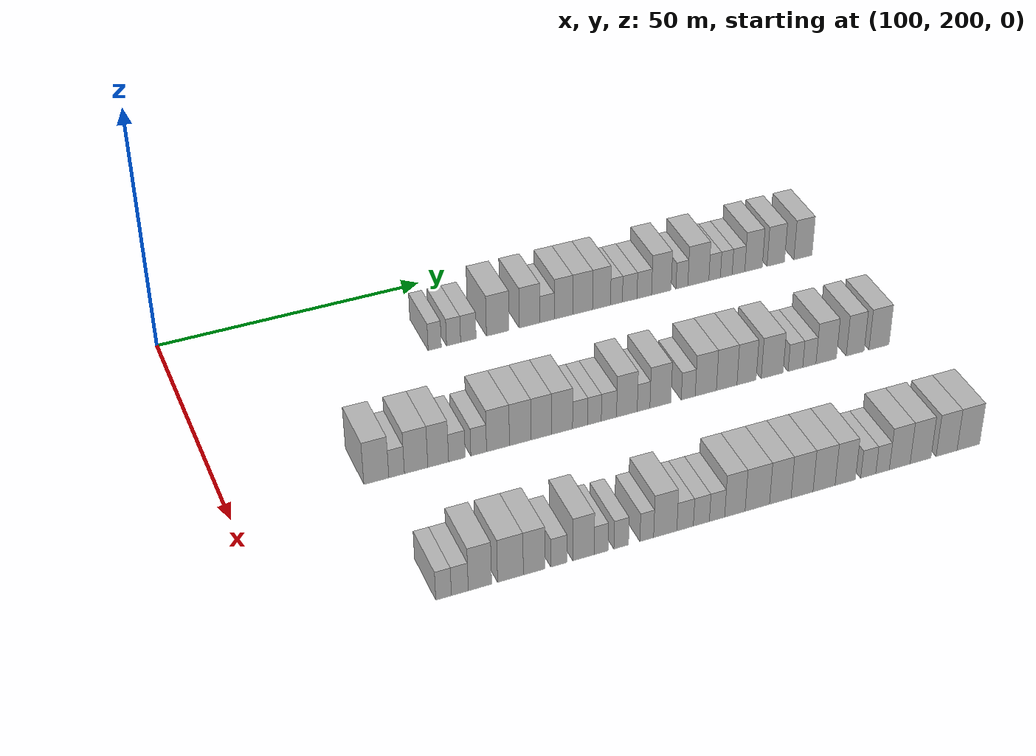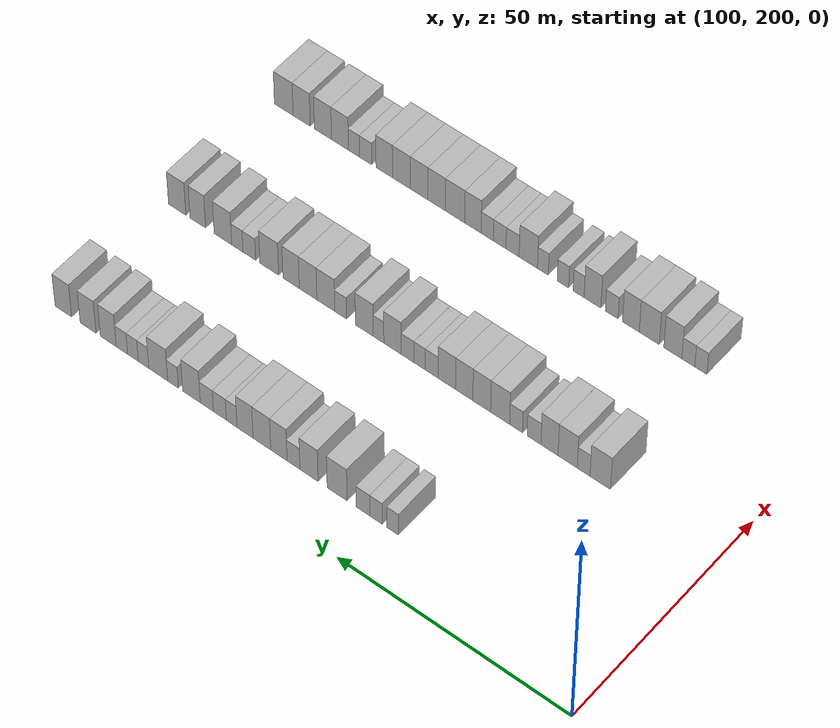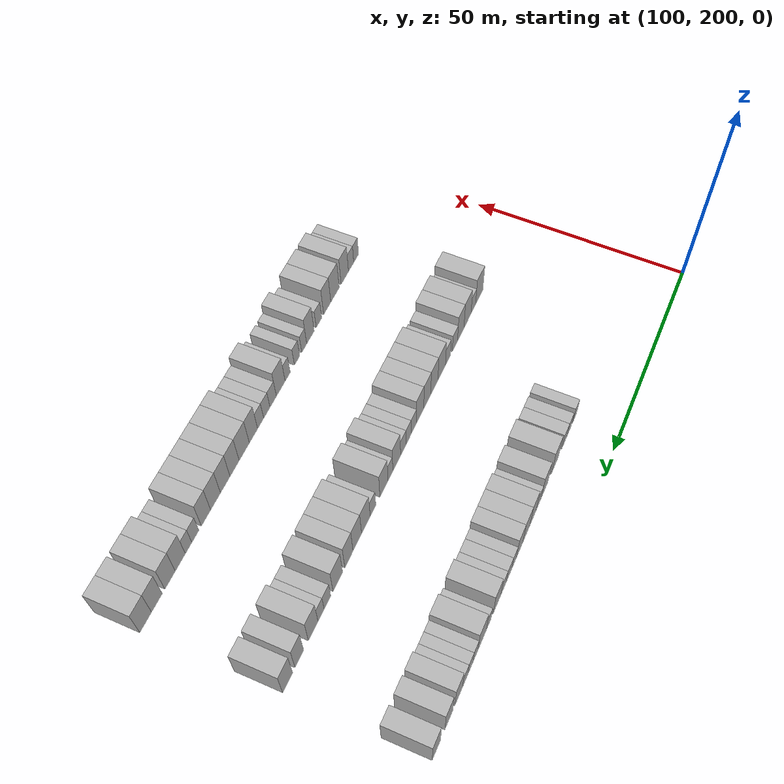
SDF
<sdf version="1.6">
 <world name="default">
  <model name="building_868">
   <static>1</static>
   <pose>115.0000 246.0410 0 0.000000 0.000000 0.000000</pose>
   <link name="link">
    <pose>0 0 3.00 0 0 0</pose>
    <collision name="collision"><geometry><box><size>10.0000 2.5230 6.0000</size></box></geometry></collision>
    <visual name="visual">
     <cast_shadows>0</cast_shadows>
     <geometry><box><size>10.0000 2.5230 6.0000</size></box></geometry>
     <material>
      <script>
       <uri>model://HANNAS_wall/materials/scripts</uri>
       <uri>model://HANNAS_wall/materials/textures</uri>
       <name>vrc/HANNAS_wall</name>
      </script>
     </material>
    </visual>
   </link>
  </model>
  <model name="building_869">
   <static>1</static>
   <pose>115.0000 249.6527 0 0.000000 0.000000 0.000000</pose>
   <link name="link">
    <pose>0 0 3.00 0 0 0</pose>
    <collision name="collision"><geometry><box><size>10.0000 2.7004 6.0000</size></box></geometry></collision>
    <visual name="visual">
     <cast_shadows>0</cast_shadows>
     <geometry><box><size>10.0000 2.7004 6.0000</size></box></geometry>
     <material>
      <script>
       <uri>model://HANNAS_wall/materials/scripts</uri>
       <uri>model://HANNAS_wall/materials/textures</uri>
       <name>vrc/HANNAS_wall</name>
      </script>
     </material>
    </visual>
   </link>
  </model>
  <model name="building_870">
   <static>1</static>
   <pose>115.0000 252.5014 0 0.000000 0.000000 0.000000</pose>
   <link name="link">
    <pose>0 0 3.00 0 0 0</pose>
    <collision name="collision"><geometry><box><size>10.0000 2.9969 6.0000</size></box></geometry></collision>
    <visual name="visual">
     <cast_shadows>0</cast_shadows>
     <geometry><box><size>10.0000 2.9969 6.0000</size></box></geometry>
     <material>
      <script>
       <uri>model://HANNAS_wall/materials/scripts</uri>
       <uri>model://HANNAS_wall/materials/textures</uri>
       <name>vrc/HANNAS_wall</name>
      </script>
     </material>
    </visual>
   </link>
  </model>
  <model name="building_871">
   <static>1</static>
   <pose>115.0000 258.2011 0 0.000000 0.000000 0.000000</pose>
   <link name="link">
    <pose>0 0 4.50 0 0 0</pose>
    <collision name="collision"><geometry><box><size>10.0000 4.4026 9.0000</size></box></geometry></collision>
    <visual name="visual">
     <cast_shadows>0</cast_shadows>
     <geometry><box><size>10.0000 4.4026 9.0000</size></box></geometry>
     <material>
      <script>
       <uri>model://HANNAS_wall/materials/scripts</uri>
       <uri>model://HANNAS_wall/materials/textures</uri>
       <name>vrc/HANNAS_wall</name>
      </script>
     </material>
    </visual>
   </link>
  </model>
  <model name="building_872">
   <static>1</static>
   <pose>115.0000 264.4160 0 0.000000 0.000000 0.000000</pose>
   <link name="link">
    <pose>0 0 4.50 0 0 0</pose>
    <collision name="collision"><geometry><box><size>10.0000 4.0273 9.0000</size></box></geometry></collision>
    <visual name="visual">
     <cast_shadows>0</cast_shadows>
     <geometry><box><size>10.0000 4.0273 9.0000</size></box></geometry>
     <material>
      <script>
       <uri>model://HANNAS_wall/materials/scripts</uri>
       <uri>model://HANNAS_wall/materials/textures</uri>
       <name>vrc/HANNAS_wall</name>
      </script>
     </material>
    </visual>
   </link>
  </model>
  <model name="building_873">
   <static>1</static>
   <pose>115.0000 267.8663 0 0.000000 0.000000 0.000000</pose>
   <link name="link">
    <pose>0 0 3.00 0 0 0</pose>
    <collision name="collision"><geometry><box><size>10.0000 2.8734 6.0000</size></box></geometry></collision>
    <visual name="visual">
     <cast_shadows>0</cast_shadows>
     <geometry><box><size>10.0000 2.8734 6.0000</size></box></geometry>
     <material>
      <script>
       <uri>model://HANNAS_wall/materials/scripts</uri>
       <uri>model://HANNAS_wall/materials/textures</uri>
       <name>vrc/HANNAS_wall</name>
      </script>
     </material>
    </visual>
   </link>
  </model>
  <model name="building_874">
   <static>1</static>
   <pose>115.0000 271.1261 0 0.000000 0.000000 0.000000</pose>
   <link name="link">
    <pose>0 0 4.50 0 0 0</pose>
    <collision name="collision"><geometry><box><size>10.0000 3.6462 9.0000</size></box></geometry></collision>
    <visual name="visual">
     <cast_shadows>0</cast_shadows>
     <geometry><box><size>10.0000 3.6462 9.0000</size></box></geometry>
     <material>
      <script>
       <uri>model://HANNAS_wall/materials/scripts</uri>
       <uri>model://HANNAS_wall/materials/textures</uri>
       <name>vrc/HANNAS_wall</name>
      </script>
     </material>
    </visual>
   </link>
  </model>
  <model name="building_875">
   <static>1</static>
   <pose>115.0000 274.9411 0 0.000000 0.000000 0.000000</pose>
   <link name="link">
    <pose>0 0 4.50 0 0 0</pose>
    <collision name="collision"><geometry><box><size>10.0000 3.9839 9.0000</size></box></geometry></collision>
    <visual name="visual">
     <cast_shadows>0</cast_shadows>
     <geometry><box><size>10.0000 3.9839 9.0000</size></box></geometry>
     <material>
      <script>
       <uri>model://HANNAS_wall/materials/scripts</uri>
       <uri>model://HANNAS_wall/materials/textures</uri>
       <name>vrc/HANNAS_wall</name>
      </script>
     </material>
    </visual>
   </link>
  </model>
  <model name="building_876">
   <static>1</static>
   <pose>115.0000 278.7440 0 0.000000 0.000000 0.000000</pose>
   <link name="link">
    <pose>0 0 4.50 0 0 0</pose>
    <collision name="collision"><geometry><box><size>10.0000 3.6219 9.0000</size></box></geometry></collision>
    <visual name="visual">
     <cast_shadows>0</cast_shadows>
     <geometry><box><size>10.0000 3.6219 9.0000</size></box></geometry>
     <material>
      <script>
       <uri>model://HANNAS_wall/materials/scripts</uri>
       <uri>model://HANNAS_wall/materials/textures</uri>
       <name>vrc/HANNAS_wall</name>
      </script>
     </material>
    </visual>
   </link>
  </model>
  <model name="building_877">
   <static>1</static>
   <pose>115.0000 281.7554 0 0.000000 0.000000 0.000000</pose>
   <link name="link">
    <pose>0 0 3.00 0 0 0</pose>
    <collision name="collision"><geometry><box><size>10.0000 2.4010 6.0000</size></box></geometry></collision>
    <visual name="visual">
     <cast_shadows>0</cast_shadows>
     <geometry><box><size>10.0000 2.4010 6.0000</size></box></geometry>
     <material>
      <script>
       <uri>model://HANNAS_wall/materials/scripts</uri>
       <uri>model://HANNAS_wall/materials/textures</uri>
       <name>vrc/HANNAS_wall</name>
      </script>
     </material>
    </visual>
   </link>
  </model>
  <model name="building_878">
   <static>1</static>
   <pose>115.0000 284.4389 0 0.000000 0.000000 0.000000</pose>
   <link name="link">
    <pose>0 0 3.00 0 0 0</pose>
    <collision name="collision"><geometry><box><size>10.0000 2.9659 6.0000</size></box></geometry></collision>
    <visual name="visual">
     <cast_shadows>0</cast_shadows>
     <geometry><box><size>10.0000 2.9659 6.0000</size></box></geometry>
     <material>
      <script>
       <uri>model://HANNAS_wall/materials/scripts</uri>
       <uri>model://HANNAS_wall/materials/textures</uri>
       <name>vrc/HANNAS_wall</name>
      </script>
     </material>
    </visual>
   </link>
  </model>
  <model name="building_879">
   <static>1</static>
   <pose>115.0000 287.4059 0 0.000000 0.000000 0.000000</pose>
   <link name="link">
    <pose>0 0 3.00 0 0 0</pose>
    <collision name="collision"><geometry><box><size>10.0000 2.9681 6.0000</size></box></geometry></collision>
    <visual name="visual">
     <cast_shadows>0</cast_shadows>
     <geometry><box><size>10.0000 2.9681 6.0000</size></box></geometry>
     <material>
      <script>
       <uri>model://HANNAS_wall/materials/scripts</uri>
       <uri>model://HANNAS_wall/materials/textures</uri>
       <name>vrc/HANNAS_wall</name>
      </script>
     </material>
    </visual>
   </link>
  </model>
  <model name="building_880">
   <static>1</static>
   <pose>115.0000 290.8956 0 0.000000 0.000000 0.000000</pose>
   <link name="link">
    <pose>0 0 4.50 0 0 0</pose>
    <collision name="collision"><geometry><box><size>10.0000 4.0112 9.0000</size></box></geometry></collision>
    <visual name="visual">
     <cast_shadows>0</cast_shadows>
     <geometry><box><size>10.0000 4.0112 9.0000</size></box></geometry>
     <material>
      <script>
       <uri>model://HANNAS_wall/materials/scripts</uri>
       <uri>model://HANNAS_wall/materials/textures</uri>
       <name>vrc/HANNAS_wall</name>
      </script>
     </material>
    </visual>
   </link>
  </model>
  <model name="building_881">
   <static>1</static>
   <pose>115.0000 295.1286 0 0.000000 0.000000 0.000000</pose>
   <link name="link">
    <pose>0 0 3.00 0 0 0</pose>
    <collision name="collision"><geometry><box><size>10.0000 2.4549 6.0000</size></box></geometry></collision>
    <visual name="visual">
     <cast_shadows>0</cast_shadows>
     <geometry><box><size>10.0000 2.4549 6.0000</size></box></geometry>
     <material>
      <script>
       <uri>model://HANNAS_wall/materials/scripts</uri>
       <uri>model://HANNAS_wall/materials/textures</uri>
       <name>vrc/HANNAS_wall</name>
      </script>
     </material>
    </visual>
   </link>
  </model>
  <model name="building_882">
   <static>1</static>
   <pose>115.0000 298.5364 0 0.000000 0.000000 0.000000</pose>
   <link name="link">
    <pose>0 0 4.50 0 0 0</pose>
    <collision name="collision"><geometry><box><size>10.0000 4.3608 9.0000</size></box></geometry></collision>
    <visual name="visual">
     <cast_shadows>0</cast_shadows>
     <geometry><box><size>10.0000 4.3608 9.0000</size></box></geometry>
     <material>
      <script>
       <uri>model://HANNAS_wall/materials/scripts</uri>
       <uri>model://HANNAS_wall/materials/textures</uri>
       <name>vrc/HANNAS_wall</name>
      </script>
     </material>
    </visual>
   </link>
  </model>
  <model name="building_883">
   <static>1</static>
   <pose>115.0000 301.9217 0 0.000000 0.000000 0.000000</pose>
   <link name="link">
    <pose>0 0 3.00 0 0 0</pose>
    <collision name="collision"><geometry><box><size>10.0000 2.4096 6.0000</size></box></geometry></collision>
    <visual name="visual">
     <cast_shadows>0</cast_shadows>
     <geometry><box><size>10.0000 2.4096 6.0000</size></box></geometry>
     <material>
      <script>
       <uri>model://HANNAS_wall/materials/scripts</uri>
       <uri>model://HANNAS_wall/materials/textures</uri>
       <name>vrc/HANNAS_wall</name>
      </script>
     </material>
    </visual>
   </link>
  </model>
  <model name="building_884">
   <static>1</static>
   <pose>115.0000 304.3575 0 0.000000 0.000000 0.000000</pose>
   <link name="link">
    <pose>0 0 3.00 0 0 0</pose>
    <collision name="collision"><geometry><box><size>10.0000 2.4620 6.0000</size></box></geometry></collision>
    <visual name="visual">
     <cast_shadows>0</cast_shadows>
     <geometry><box><size>10.0000 2.4620 6.0000</size></box></geometry>
     <material>
      <script>
       <uri>model://HANNAS_wall/materials/scripts</uri>
       <uri>model://HANNAS_wall/materials/textures</uri>
       <name>vrc/HANNAS_wall</name>
      </script>
     </material>
    </visual>
   </link>
  </model>
  <model name="building_885">
   <static>1</static>
   <pose>115.0000 306.9164 0 0.000000 0.000000 0.000000</pose>
   <link name="link">
    <pose>0 0 3.00 0 0 0</pose>
    <collision name="collision"><geometry><box><size>10.0000 2.6560 6.0000</size></box></geometry></collision>
    <visual name="visual">
     <cast_shadows>0</cast_shadows>
     <geometry><box><size>10.0000 2.6560 6.0000</size></box></geometry>
     <material>
      <script>
       <uri>model://HANNAS_wall/materials/scripts</uri>
       <uri>model://HANNAS_wall/materials/textures</uri>
       <name>vrc/HANNAS_wall</name>
      </script>
     </material>
    </visual>
   </link>
  </model>
  <model name="building_886">
   <static>1</static>
   <pose>115.0000 310.0950 0 0.000000 0.000000 0.000000</pose>
   <link name="link">
    <pose>0 0 4.50 0 0 0</pose>
    <collision name="collision"><geometry><box><size>10.0000 3.7012 9.0000</size></box></geometry></collision>
    <visual name="visual">
     <cast_shadows>0</cast_shadows>
     <geometry><box><size>10.0000 3.7012 9.0000</size></box></geometry>
     <material>
      <script>
       <uri>model://HANNAS_wall/materials/scripts</uri>
       <uri>model://HANNAS_wall/materials/textures</uri>
       <name>vrc/HANNAS_wall</name>
      </script>
     </material>
    </visual>
   </link>
  </model>
  <model name="building_887">
   <static>1</static>
   <pose>115.0000 314.8096 0 0.000000 0.000000 0.000000</pose>
   <link name="link">
    <pose>0 0 4.50 0 0 0</pose>
    <collision name="collision"><geometry><box><size>10.0000 3.7280 9.0000</size></box></geometry></collision>
    <visual name="visual">
     <cast_shadows>0</cast_shadows>
     <geometry><box><size>10.0000 3.7280 9.0000</size></box></geometry>
     <material>
      <script>
       <uri>model://HANNAS_wall/materials/scripts</uri>
       <uri>model://HANNAS_wall/materials/textures</uri>
       <name>vrc/HANNAS_wall</name>
      </script>
     </material>
    </visual>
   </link>
  </model>
  <model name="building_888">
   <static>1</static>
   <pose>115.0000 320.6206 0 0.000000 0.000000 0.000000</pose>
   <link name="link">
    <pose>0 0 4.50 0 0 0</pose>
    <collision name="collision"><geometry><box><size>10.0000 3.8940 9.0000</size></box></geometry></collision>
    <visual name="visual">
     <cast_shadows>0</cast_shadows>
     <geometry><box><size>10.0000 3.8940 9.0000</size></box></geometry>
     <material>
      <script>
       <uri>model://HANNAS_wall/materials/scripts</uri>
       <uri>model://HANNAS_wall/materials/textures</uri>
       <name>vrc/HANNAS_wall</name>
      </script>
     </material>
    </visual>
   </link>
  </model>
  <model name="building_1094">
   <static>1</static>
   <pose>145.0000 224.9769 0 0.000000 0.000000 0.000000</pose>
   <link name="link">
    <pose>0 0 4.50 0 0 0</pose>
    <collision name="collision"><geometry><box><size>10.0000 4.3814 9.0000</size></box></geometry></collision>
    <visual name="visual">
     <cast_shadows>0</cast_shadows>
     <geometry><box><size>10.0000 4.3814 9.0000</size></box></geometry>
     <material>
      <script>
       <uri>model://HANNAS_wall/materials/scripts</uri>
       <uri>model://HANNAS_wall/materials/textures</uri>
       <name>vrc/HANNAS_wall</name>
      </script>
     </material>
    </visual>
   </link>
  </model>
  <model name="building_1095">
   <static>1</static>
   <pose>145.0000 228.5388 0 0.000000 0.000000 0.000000</pose>
   <link name="link">
    <pose>0 0 3.00 0 0 0</pose>
    <collision name="collision"><geometry><box><size>10.0000 2.7424 6.0000</size></box></geometry></collision>
    <visual name="visual">
     <cast_shadows>0</cast_shadows>
     <geometry><box><size>10.0000 2.7424 6.0000</size></box></geometry>
     <material>
      <script>
       <uri>model://HANNAS_wall/materials/scripts</uri>
       <uri>model://HANNAS_wall/materials/textures</uri>
       <name>vrc/HANNAS_wall</name>
      </script>
     </material>
    </visual>
   </link>
  </model>
  <model name="building_1096">
   <static>1</static>
   <pose>145.0000 231.9856 0 0.000000 0.000000 0.000000</pose>
   <link name="link">
    <pose>0 0 4.50 0 0 0</pose>
    <collision name="collision"><geometry><box><size>10.0000 4.1513 9.0000</size></box></geometry></collision>
    <visual name="visual">
     <cast_shadows>0</cast_shadows>
     <geometry><box><size>10.0000 4.1513 9.0000</size></box></geometry>
     <material>
      <script>
       <uri>model://HANNAS_wall/materials/scripts</uri>
       <uri>model://HANNAS_wall/materials/textures</uri>
       <name>vrc/HANNAS_wall</name>
      </script>
     </material>
    </visual>
   </link>
  </model>
  <model name="building_1097">
   <static>1</static>
   <pose>145.0000 235.9176 0 0.000000 0.000000 0.000000</pose>
   <link name="link">
    <pose>0 0 4.50 0 0 0</pose>
    <collision name="collision"><geometry><box><size>10.0000 3.7126 9.0000</size></box></geometry></collision>
    <visual name="visual">
     <cast_shadows>0</cast_shadows>
     <geometry><box><size>10.0000 3.7126 9.0000</size></box></geometry>
     <material>
      <script>
       <uri>model://HANNAS_wall/materials/scripts</uri>
       <uri>model://HANNAS_wall/materials/textures</uri>
       <name>vrc/HANNAS_wall</name>
      </script>
     </material>
    </visual>
   </link>
  </model>
  <model name="building_1098">
   <static>1</static>
   <pose>145.0000 239.2686 0 0.000000 0.000000 0.000000</pose>
   <link name="link">
    <pose>0 0 3.00 0 0 0</pose>
    <collision name="collision"><geometry><box><size>10.0000 2.9894 6.0000</size></box></geometry></collision>
    <visual name="visual">
     <cast_shadows>0</cast_shadows>
     <geometry><box><size>10.0000 2.9894 6.0000</size></box></geometry>
     <material>
      <script>
       <uri>model://HANNAS_wall/materials/scripts</uri>
       <uri>model://HANNAS_wall/materials/textures</uri>
       <name>vrc/HANNAS_wall</name>
      </script>
     </material>
    </visual>
   </link>
  </model>
  <model name="building_1099">
   <static>1</static>
   <pose>145.0000 243.1831 0 0.000000 0.000000 0.000000</pose>
   <link name="link">
    <pose>0 0 3.00 0 0 0</pose>
    <collision name="collision"><geometry><box><size>10.0000 2.8396 6.0000</size></box></geometry></collision>
    <visual name="visual">
     <cast_shadows>0</cast_shadows>
     <geometry><box><size>10.0000 2.8396 6.0000</size></box></geometry>
     <material>
      <script>
       <uri>model://HANNAS_wall/materials/scripts</uri>
       <uri>model://HANNAS_wall/materials/textures</uri>
       <name>vrc/HANNAS_wall</name>
      </script>
     </material>
    </visual>
   </link>
  </model>
  <model name="building_1100">
   <static>1</static>
   <pose>145.0000 246.6872 0 0.000000 0.000000 0.000000</pose>
   <link name="link">
    <pose>0 0 4.50 0 0 0</pose>
    <collision name="collision"><geometry><box><size>10.0000 4.1685 9.0000</size></box></geometry></collision>
    <visual name="visual">
     <cast_shadows>0</cast_shadows>
     <geometry><box><size>10.0000 4.1685 9.0000</size></box></geometry>
     <material>
      <script>
       <uri>model://HANNAS_wall/materials/scripts</uri>
       <uri>model://HANNAS_wall/materials/textures</uri>
       <name>vrc/HANNAS_wall</name>
      </script>
     </material>
    </visual>
   </link>
  </model>
  <model name="building_1101">
   <static>1</static>
   <pose>145.0000 250.7386 0 0.000000 0.000000 0.000000</pose>
   <link name="link">
    <pose>0 0 4.50 0 0 0</pose>
    <collision name="collision"><geometry><box><size>10.0000 3.9342 9.0000</size></box></geometry></collision>
    <visual name="visual">
     <cast_shadows>0</cast_shadows>
     <geometry><box><size>10.0000 3.9342 9.0000</size></box></geometry>
     <material>
      <script>
       <uri>model://HANNAS_wall/materials/scripts</uri>
       <uri>model://HANNAS_wall/materials/textures</uri>
       <name>vrc/HANNAS_wall</name>
      </script>
     </material>
    </visual>
   </link>
  </model>
  <model name="building_1102">
   <static>1</static>
   <pose>145.0000 254.5918 0 0.000000 0.000000 0.000000</pose>
   <link name="link">
    <pose>0 0 4.50 0 0 0</pose>
    <collision name="collision"><geometry><box><size>10.0000 3.7723 9.0000</size></box></geometry></collision>
    <visual name="visual">
     <cast_shadows>0</cast_shadows>
     <geometry><box><size>10.0000 3.7723 9.0000</size></box></geometry>
     <material>
      <script>
       <uri>model://HANNAS_wall/materials/scripts</uri>
       <uri>model://HANNAS_wall/materials/textures</uri>
       <name>vrc/HANNAS_wall</name>
      </script>
     </material>
    </visual>
   </link>
  </model>
  <model name="building_1103">
   <static>1</static>
   <pose>145.0000 258.4326 0 0.000000 0.000000 0.000000</pose>
   <link name="link">
    <pose>0 0 4.50 0 0 0</pose>
    <collision name="collision"><geometry><box><size>10.0000 3.9094 9.0000</size></box></geometry></collision>
    <visual name="visual">
     <cast_shadows>0</cast_shadows>
     <geometry><box><size>10.0000 3.9094 9.0000</size></box></geometry>
     <material>
      <script>
       <uri>model://HANNAS_wall/materials/scripts</uri>
       <uri>model://HANNAS_wall/materials/textures</uri>
       <name>vrc/HANNAS_wall</name>
      </script>
     </material>
    </visual>
   </link>
  </model>
  <model name="building_1104">
   <static>1</static>
   <pose>145.0000 261.8042 0 0.000000 0.000000 0.000000</pose>
   <link name="link">
    <pose>0 0 3.00 0 0 0</pose>
    <collision name="collision"><geometry><box><size>10.0000 2.8339 6.0000</size></box></geometry></collision>
    <visual name="visual">
     <cast_shadows>0</cast_shadows>
     <geometry><box><size>10.0000 2.8339 6.0000</size></box></geometry>
     <material>
      <script>
       <uri>model://HANNAS_wall/materials/scripts</uri>
       <uri>model://HANNAS_wall/materials/textures</uri>
       <name>vrc/HANNAS_wall</name>
      </script>
     </material>
    </visual>
   </link>
  </model>
  <model name="building_1105">
   <static>1</static>
   <pose>145.0000 264.4873 0 0.000000 0.000000 0.000000</pose>
   <link name="link">
    <pose>0 0 3.00 0 0 0</pose>
    <collision name="collision"><geometry><box><size>10.0000 2.5323 6.0000</size></box></geometry></collision>
    <visual name="visual">
     <cast_shadows>0</cast_shadows>
     <geometry><box><size>10.0000 2.5323 6.0000</size></box></geometry>
     <material>
      <script>
       <uri>model://HANNAS_wall/materials/scripts</uri>
       <uri>model://HANNAS_wall/materials/textures</uri>
       <name>vrc/HANNAS_wall</name>
      </script>
     </material>
    </visual>
   </link>
  </model>
  <model name="building_1106">
   <static>1</static>
   <pose>145.0000 267.1907 0 0.000000 0.000000 0.000000</pose>
   <link name="link">
    <pose>0 0 3.00 0 0 0</pose>
    <collision name="collision"><geometry><box><size>10.0000 2.8744 6.0000</size></box></geometry></collision>
    <visual name="visual">
     <cast_shadows>0</cast_shadows>
     <geometry><box><size>10.0000 2.8744 6.0000</size></box></geometry>
     <material>
      <script>
       <uri>model://HANNAS_wall/materials/scripts</uri>
       <uri>model://HANNAS_wall/materials/textures</uri>
       <name>vrc/HANNAS_wall</name>
      </script>
     </material>
    </visual>
   </link>
  </model>
  <model name="building_1107">
   <static>1</static>
   <pose>145.0000 270.5817 0 0.000000 0.000000 0.000000</pose>
   <link name="link">
    <pose>0 0 4.50 0 0 0</pose>
    <collision name="collision"><geometry><box><size>10.0000 3.9076 9.0000</size></box></geometry></collision>
    <visual name="visual">
     <cast_shadows>0</cast_shadows>
     <geometry><box><size>10.0000 3.9076 9.0000</size></box></geometry>
     <material>
      <script>
       <uri>model://HANNAS_wall/materials/scripts</uri>
       <uri>model://HANNAS_wall/materials/textures</uri>
       <name>vrc/HANNAS_wall</name>
      </script>
     </material>
    </visual>
   </link>
  </model>
  <model name="building_1108">
   <static>1</static>
   <pose>145.0000 273.7438 0 0.000000 0.000000 0.000000</pose>
   <link name="link">
    <pose>0 0 3.00 0 0 0</pose>
    <collision name="collision"><geometry><box><size>10.0000 2.4166 6.0000</size></box></geometry></collision>
    <visual name="visual">
     <cast_shadows>0</cast_shadows>
     <geometry><box><size>10.0000 2.4166 6.0000</size></box></geometry>
     <material>
      <script>
       <uri>model://HANNAS_wall/materials/scripts</uri>
       <uri>model://HANNAS_wall/materials/textures</uri>
       <name>vrc/HANNAS_wall</name>
      </script>
     </material>
    </visual>
   </link>
  </model>
  <model name="building_1109">
   <static>1</static>
   <pose>145.0000 276.9558 0 0.000000 0.000000 0.000000</pose>
   <link name="link">
    <pose>0 0 4.50 0 0 0</pose>
    <collision name="collision"><geometry><box><size>10.0000 4.0074 9.0000</size></box></geometry></collision>
    <visual name="visual">
     <cast_shadows>0</cast_shadows>
     <geometry><box><size>10.0000 4.0074 9.0000</size></box></geometry>
     <material>
      <script>
       <uri>model://HANNAS_wall/materials/scripts</uri>
       <uri>model://HANNAS_wall/materials/textures</uri>
       <name>vrc/HANNAS_wall</name>
      </script>
     </material>
    </visual>
   </link>
  </model>
  <model name="building_1110">
   <static>1</static>
   <pose>145.0000 282.3059 0 0.000000 0.000000 0.000000</pose>
   <link name="link">
    <pose>0 0 3.00 0 0 0</pose>
    <collision name="collision"><geometry><box><size>10.0000 2.6928 6.0000</size></box></geometry></collision>
    <visual name="visual">
     <cast_shadows>0</cast_shadows>
     <geometry><box><size>10.0000 2.6928 6.0000</size></box></geometry>
     <material>
      <script>
       <uri>model://HANNAS_wall/materials/scripts</uri>
       <uri>model://HANNAS_wall/materials/textures</uri>
       <name>vrc/HANNAS_wall</name>
      </script>
     </material>
    </visual>
   </link>
  </model>
  <model name="building_1111">
   <static>1</static>
   <pose>145.0000 285.7083 0 0.000000 0.000000 0.000000</pose>
   <link name="link">
    <pose>0 0 4.50 0 0 0</pose>
    <collision name="collision"><geometry><box><size>10.0000 4.1120 9.0000</size></box></geometry></collision>
    <visual name="visual">
     <cast_shadows>0</cast_shadows>
     <geometry><box><size>10.0000 4.1120 9.0000</size></box></geometry>
     <material>
      <script>
       <uri>model://HANNAS_wall/materials/scripts</uri>
       <uri>model://HANNAS_wall/materials/textures</uri>
       <name>vrc/HANNAS_wall</name>
      </script>
     </material>
    </visual>
   </link>
  </model>
  <model name="building_1112">
   <static>1</static>
   <pose>145.0000 289.7722 0 0.000000 0.000000 0.000000</pose>
   <link name="link">
    <pose>0 0 4.50 0 0 0</pose>
    <collision name="collision"><geometry><box><size>10.0000 4.0158 9.0000</size></box></geometry></collision>
    <visual name="visual">
     <cast_shadows>0</cast_shadows>
     <geometry><box><size>10.0000 4.0158 9.0000</size></box></geometry>
     <material>
      <script>
       <uri>model://HANNAS_wall/materials/scripts</uri>
       <uri>model://HANNAS_wall/materials/textures</uri>
       <name>vrc/HANNAS_wall</name>
      </script>
     </material>
    </visual>
   </link>
  </model>
  <model name="building_1113">
   <static>1</static>
   <pose>145.0000 293.6669 0 0.000000 0.000000 0.000000</pose>
   <link name="link">
    <pose>0 0 4.50 0 0 0</pose>
    <collision name="collision"><geometry><box><size>10.0000 3.7736 9.0000</size></box></geometry></collision>
    <visual name="visual">
     <cast_shadows>0</cast_shadows>
     <geometry><box><size>10.0000 3.7736 9.0000</size></box></geometry>
     <material>
      <script>
       <uri>model://HANNAS_wall/materials/scripts</uri>
       <uri>model://HANNAS_wall/materials/textures</uri>
       <name>vrc/HANNAS_wall</name>
      </script>
     </material>
    </visual>
   </link>
  </model>
  <model name="building_1114">
   <static>1</static>
   <pose>145.0000 298.7221 0 0.000000 0.000000 0.000000</pose>
   <link name="link">
    <pose>0 0 4.50 0 0 0</pose>
    <collision name="collision"><geometry><box><size>10.0000 4.3369 9.0000</size></box></geometry></collision>
    <visual name="visual">
     <cast_shadows>0</cast_shadows>
     <geometry><box><size>10.0000 4.3369 9.0000</size></box></geometry>
     <material>
      <script>
       <uri>model://HANNAS_wall/materials/scripts</uri>
       <uri>model://HANNAS_wall/materials/textures</uri>
       <name>vrc/HANNAS_wall</name>
      </script>
     </material>
    </visual>
   </link>
  </model>
  <model name="building_1115">
   <static>1</static>
   <pose>145.0000 303.3540 0 0.000000 0.000000 0.000000</pose>
   <link name="link">
    <pose>0 0 3.00 0 0 0</pose>
    <collision name="collision"><geometry><box><size>10.0000 2.9269 6.0000</size></box></geometry></collision>
    <visual name="visual">
     <cast_shadows>0</cast_shadows>
     <geometry><box><size>10.0000 2.9269 6.0000</size></box></geometry>
     <material>
      <script>
       <uri>model://HANNAS_wall/materials/scripts</uri>
       <uri>model://HANNAS_wall/materials/textures</uri>
       <name>vrc/HANNAS_wall</name>
      </script>
     </material>
    </visual>
   </link>
  </model>
  <model name="building_1116">
   <static>1</static>
   <pose>145.0000 306.1421 0 0.000000 0.000000 0.000000</pose>
   <link name="link">
    <pose>0 0 3.00 0 0 0</pose>
    <collision name="collision"><geometry><box><size>10.0000 2.6493 6.0000</size></box></geometry></collision>
    <visual name="visual">
     <cast_shadows>0</cast_shadows>
     <geometry><box><size>10.0000 2.6493 6.0000</size></box></geometry>
     <material>
      <script>
       <uri>model://HANNAS_wall/materials/scripts</uri>
       <uri>model://HANNAS_wall/materials/textures</uri>
       <name>vrc/HANNAS_wall</name>
      </script>
     </material>
    </visual>
   </link>
  </model>
  <model name="building_1117">
   <static>1</static>
   <pose>145.0000 309.5275 0 0.000000 0.000000 0.000000</pose>
   <link name="link">
    <pose>0 0 4.50 0 0 0</pose>
    <collision name="collision"><geometry><box><size>10.0000 4.1215 9.0000</size></box></geometry></collision>
    <visual name="visual">
     <cast_shadows>0</cast_shadows>
     <geometry><box><size>10.0000 4.1215 9.0000</size></box></geometry>
     <material>
      <script>
       <uri>model://HANNAS_wall/materials/scripts</uri>
       <uri>model://HANNAS_wall/materials/textures</uri>
       <name>vrc/HANNAS_wall</name>
      </script>
     </material>
    </visual>
   </link>
  </model>
  <model name="building_1118">
   <static>1</static>
   <pose>145.0000 315.4065 0 0.000000 0.000000 0.000000</pose>
   <link name="link">
    <pose>0 0 4.50 0 0 0</pose>
    <collision name="collision"><geometry><box><size>10.0000 3.6365 9.0000</size></box></geometry></collision>
    <visual name="visual">
     <cast_shadows>0</cast_shadows>
     <geometry><box><size>10.0000 3.6365 9.0000</size></box></geometry>
     <material>
      <script>
       <uri>model://HANNAS_wall/materials/scripts</uri>
       <uri>model://HANNAS_wall/materials/textures</uri>
       <name>vrc/HANNAS_wall</name>
      </script>
     </material>
    </visual>
   </link>
  </model>
  <model name="building_1119">
   <static>1</static>
   <pose>145.0000 320.2762 0 0.000000 0.000000 0.000000</pose>
   <link name="link">
    <pose>0 0 4.50 0 0 0</pose>
    <collision name="collision"><geometry><box><size>10.0000 4.1030 9.0000</size></box></geometry></collision>
    <visual name="visual">
     <cast_shadows>0</cast_shadows>
     <geometry><box><size>10.0000 4.1030 9.0000</size></box></geometry>
     <material>
      <script>
       <uri>model://HANNAS_wall/materials/scripts</uri>
       <uri>model://HANNAS_wall/materials/textures</uri>
       <name>vrc/HANNAS_wall</name>
      </script>
     </material>
    </visual>
   </link>
  </model>
  <model name="building_1328">
   <static>1</static>
   <pose>175.0000 226.0085 0 0.000000 0.000000 0.000000</pose>
   <link name="link">
    <pose>0 0 3.00 0 0 0</pose>
    <collision name="collision"><geometry><box><size>10.0000 2.6011 6.0000</size></box></geometry></collision>
    <visual name="visual">
     <cast_shadows>0</cast_shadows>
     <geometry><box><size>10.0000 2.6011 6.0000</size></box></geometry>
     <material>
      <script>
       <uri>model://HANNAS_wall/materials/scripts</uri>
       <uri>model://HANNAS_wall/materials/textures</uri>
       <name>vrc/HANNAS_wall</name>
      </script>
     </material>
    </visual>
   </link>
  </model>
  <model name="building_1329">
   <static>1</static>
   <pose>175.0000 228.7162 0 0.000000 0.000000 0.000000</pose>
   <link name="link">
    <pose>0 0 3.00 0 0 0</pose>
    <collision name="collision"><geometry><box><size>10.0000 2.8142 6.0000</size></box></geometry></collision>
    <visual name="visual">
     <cast_shadows>0</cast_shadows>
     <geometry><box><size>10.0000 2.8142 6.0000</size></box></geometry>
     <material>
      <script>
       <uri>model://HANNAS_wall/materials/scripts</uri>
       <uri>model://HANNAS_wall/materials/textures</uri>
       <name>vrc/HANNAS_wall</name>
      </script>
     </material>
    </visual>
   </link>
  </model>
  <model name="building_1330">
   <static>1</static>
   <pose>175.0000 232.0821 0 0.000000 0.000000 0.000000</pose>
   <link name="link">
    <pose>0 0 4.50 0 0 0</pose>
    <collision name="collision"><geometry><box><size>10.0000 3.9176 9.0000</size></box></geometry></collision>
    <visual name="visual">
     <cast_shadows>0</cast_shadows>
     <geometry><box><size>10.0000 3.9176 9.0000</size></box></geometry>
     <material>
      <script>
       <uri>model://HANNAS_wall/materials/scripts</uri>
       <uri>model://HANNAS_wall/materials/textures</uri>
       <name>vrc/HANNAS_wall</name>
      </script>
     </material>
    </visual>
   </link>
  </model>
  <model name="building_1331">
   <static>1</static>
   <pose>175.0000 237.2239 0 0.000000 0.000000 0.000000</pose>
   <link name="link">
    <pose>0 0 4.50 0 0 0</pose>
    <collision name="collision"><geometry><box><size>10.0000 4.3661 9.0000</size></box></geometry></collision>
    <visual name="visual">
     <cast_shadows>0</cast_shadows>
     <geometry><box><size>10.0000 4.3661 9.0000</size></box></geometry>
     <material>
      <script>
       <uri>model://HANNAS_wall/materials/scripts</uri>
       <uri>model://HANNAS_wall/materials/textures</uri>
       <name>vrc/HANNAS_wall</name>
      </script>
     </material>
    </visual>
   </link>
  </model>
  <model name="building_1332">
   <static>1</static>
   <pose>175.0000 241.2485 0 0.000000 0.000000 0.000000</pose>
   <link name="link">
    <pose>0 0 4.50 0 0 0</pose>
    <collision name="collision"><geometry><box><size>10.0000 3.6831 9.0000</size></box></geometry></collision>
    <visual name="visual">
     <cast_shadows>0</cast_shadows>
     <geometry><box><size>10.0000 3.6831 9.0000</size></box></geometry>
     <material>
      <script>
       <uri>model://HANNAS_wall/materials/scripts</uri>
       <uri>model://HANNAS_wall/materials/textures</uri>
       <name>vrc/HANNAS_wall</name>
      </script>
     </material>
    </visual>
   </link>
  </model>
  <model name="building_1333">
   <static>1</static>
   <pose>175.0000 245.4829 0 0.000000 0.000000 0.000000</pose>
   <link name="link">
    <pose>0 0 3.00 0 0 0</pose>
    <collision name="collision"><geometry><box><size>10.0000 2.7857 6.0000</size></box></geometry></collision>
    <visual name="visual">
     <cast_shadows>0</cast_shadows>
     <geometry><box><size>10.0000 2.7857 6.0000</size></box></geometry>
     <material>
      <script>
       <uri>model://HANNAS_wall/materials/scripts</uri>
       <uri>model://HANNAS_wall/materials/textures</uri>
       <name>vrc/HANNAS_wall</name>
      </script>
     </material>
    </visual>
   </link>
  </model>
  <model name="building_1334">
   <static>1</static>
   <pose>175.0000 249.7268 0 0.000000 0.000000 0.000000</pose>
   <link name="link">
    <pose>0 0 4.50 0 0 0</pose>
    <collision name="collision"><geometry><box><size>10.0000 3.7021 9.0000</size></box></geometry></collision>
    <visual name="visual">
     <cast_shadows>0</cast_shadows>
     <geometry><box><size>10.0000 3.7021 9.0000</size></box></geometry>
     <material>
      <script>
       <uri>model://HANNAS_wall/materials/scripts</uri>
       <uri>model://HANNAS_wall/materials/textures</uri>
       <name>vrc/HANNAS_wall</name>
      </script>
     </material>
    </visual>
   </link>
  </model>
  <model name="building_1335">
   <static>1</static>
   <pose>175.0000 252.7989 0 0.000000 0.000000 0.000000</pose>
   <link name="link">
    <pose>0 0 3.00 0 0 0</pose>
    <collision name="collision"><geometry><box><size>10.0000 2.4420 6.0000</size></box></geometry></collision>
    <visual name="visual">
     <cast_shadows>0</cast_shadows>
     <geometry><box><size>10.0000 2.4420 6.0000</size></box></geometry>
     <material>
      <script>
       <uri>model://HANNAS_wall/materials/scripts</uri>
       <uri>model://HANNAS_wall/materials/textures</uri>
       <name>vrc/HANNAS_wall</name>
      </script>
     </material>
    </visual>
   </link>
  </model>
  <model name="building_1336">
   <static>1</static>
   <pose>175.0000 256.3027 0 0.000000 0.000000 0.000000</pose>
   <link name="link">
    <pose>0 0 3.00 0 0 0</pose>
    <collision name="collision"><geometry><box><size>10.0000 2.5656 6.0000</size></box></geometry></collision>
    <visual name="visual">
     <cast_shadows>0</cast_shadows>
     <geometry><box><size>10.0000 2.5656 6.0000</size></box></geometry>
     <material>
      <script>
       <uri>model://HANNAS_wall/materials/scripts</uri>
       <uri>model://HANNAS_wall/materials/textures</uri>
       <name>vrc/HANNAS_wall</name>
      </script>
     </material>
    </visual>
   </link>
  </model>
  <model name="building_1337">
   <static>1</static>
   <pose>175.0000 260.7976 0 0.000000 0.000000 0.000000</pose>
   <link name="link">
    <pose>0 0 3.00 0 0 0</pose>
    <collision name="collision"><geometry><box><size>10.0000 2.4241 6.0000</size></box></geometry></collision>
    <visual name="visual">
     <cast_shadows>0</cast_shadows>
     <geometry><box><size>10.0000 2.4241 6.0000</size></box></geometry>
     <material>
      <script>
       <uri>model://HANNAS_wall/materials/scripts</uri>
       <uri>model://HANNAS_wall/materials/textures</uri>
       <name>vrc/HANNAS_wall</name>
      </script>
     </material>
    </visual>
   </link>
  </model>
  <model name="building_1338">
   <static>1</static>
   <pose>175.0000 264.0718 0 0.000000 0.000000 0.000000</pose>
   <link name="link">
    <pose>0 0 4.50 0 0 0</pose>
    <collision name="collision"><geometry><box><size>10.0000 4.1243 9.0000</size></box></geometry></collision>
    <visual name="visual">
     <cast_shadows>0</cast_shadows>
     <geometry><box><size>10.0000 4.1243 9.0000</size></box></geometry>
     <material>
      <script>
       <uri>model://HANNAS_wall/materials/scripts</uri>
       <uri>model://HANNAS_wall/materials/textures</uri>
       <name>vrc/HANNAS_wall</name>
      </script>
     </material>
    </visual>
   </link>
  </model>
  <model name="building_1339">
   <static>1</static>
   <pose>175.0000 267.6150 0 0.000000 0.000000 0.000000</pose>
   <link name="link">
    <pose>0 0 3.00 0 0 0</pose>
    <collision name="collision"><geometry><box><size>10.0000 2.9621 6.0000</size></box></geometry></collision>
    <visual name="visual">
     <cast_shadows>0</cast_shadows>
     <geometry><box><size>10.0000 2.9621 6.0000</size></box></geometry>
     <material>
      <script>
       <uri>model://HANNAS_wall/materials/scripts</uri>
       <uri>model://HANNAS_wall/materials/textures</uri>
       <name>vrc/HANNAS_wall</name>
      </script>
     </material>
    </visual>
   </link>
  </model>
  <model name="building_1340">
   <static>1</static>
   <pose>175.0000 270.5391 0 0.000000 0.000000 0.000000</pose>
   <link name="link">
    <pose>0 0 3.00 0 0 0</pose>
    <collision name="collision"><geometry><box><size>10.0000 2.8862 6.0000</size></box></geometry></collision>
    <visual name="visual">
     <cast_shadows>0</cast_shadows>
     <geometry><box><size>10.0000 2.8862 6.0000</size></box></geometry>
     <material>
      <script>
       <uri>model://HANNAS_wall/materials/scripts</uri>
       <uri>model://HANNAS_wall/materials/textures</uri>
       <name>vrc/HANNAS_wall</name>
      </script>
     </material>
    </visual>
   </link>
  </model>
  <model name="building_1341">
   <static>1</static>
   <pose>175.0000 273.3623 0 0.000000 0.000000 0.000000</pose>
   <link name="link">
    <pose>0 0 3.00 0 0 0</pose>
    <collision name="collision"><geometry><box><size>10.0000 2.7604 6.0000</size></box></geometry></collision>
    <visual name="visual">
     <cast_shadows>0</cast_shadows>
     <geometry><box><size>10.0000 2.7604 6.0000</size></box></geometry>
     <material>
      <script>
       <uri>model://HANNAS_wall/materials/scripts</uri>
       <uri>model://HANNAS_wall/materials/textures</uri>
       <name>vrc/HANNAS_wall</name>
      </script>
     </material>
    </visual>
   </link>
  </model>
  <model name="building_1342">
   <static>1</static>
   <pose>175.0000 276.5979 0 0.000000 0.000000 0.000000</pose>
   <link name="link">
    <pose>0 0 4.50 0 0 0</pose>
    <collision name="collision"><geometry><box><size>10.0000 3.7107 9.0000</size></box></geometry></collision>
    <visual name="visual">
     <cast_shadows>0</cast_shadows>
     <geometry><box><size>10.0000 3.7107 9.0000</size></box></geometry>
     <material>
      <script>
       <uri>model://HANNAS_wall/materials/scripts</uri>
       <uri>model://HANNAS_wall/materials/textures</uri>
       <name>vrc/HANNAS_wall</name>
      </script>
     </material>
    </visual>
   </link>
  </model>
  <model name="building_1343">
   <static>1</static>
   <pose>175.0000 280.6899 0 0.000000 0.000000 0.000000</pose>
   <link name="link">
    <pose>0 0 4.50 0 0 0</pose>
    <collision name="collision"><geometry><box><size>10.0000 4.4733 9.0000</size></box></geometry></collision>
    <visual name="visual">
     <cast_shadows>0</cast_shadows>
     <geometry><box><size>10.0000 4.4733 9.0000</size></box></geometry>
     <material>
      <script>
       <uri>model://HANNAS_wall/materials/scripts</uri>
       <uri>model://HANNAS_wall/materials/textures</uri>
       <name>vrc/HANNAS_wall</name>
      </script>
     </material>
    </visual>
   </link>
  </model>
  <model name="building_1344">
   <static>1</static>
   <pose>175.0000 284.9109 0 0.000000 0.000000 0.000000</pose>
   <link name="link">
    <pose>0 0 4.50 0 0 0</pose>
    <collision name="collision"><geometry><box><size>10.0000 3.9686 9.0000</size></box></geometry></collision>
    <visual name="visual">
     <cast_shadows>0</cast_shadows>
     <geometry><box><size>10.0000 3.9686 9.0000</size></box></geometry>
     <material>
      <script>
       <uri>model://HANNAS_wall/materials/scripts</uri>
       <uri>model://HANNAS_wall/materials/textures</uri>
       <name>vrc/HANNAS_wall</name>
      </script>
     </material>
    </visual>
   </link>
  </model>
  <model name="building_1345">
   <static>1</static>
   <pose>175.0000 288.9365 0 0.000000 0.000000 0.000000</pose>
   <link name="link">
    <pose>0 0 4.50 0 0 0</pose>
    <collision name="collision"><geometry><box><size>10.0000 4.0826 9.0000</size></box></geometry></collision>
    <visual name="visual">
     <cast_shadows>0</cast_shadows>
     <geometry><box><size>10.0000 4.0826 9.0000</size></box></geometry>
     <material>
      <script>
       <uri>model://HANNAS_wall/materials/scripts</uri>
       <uri>model://HANNAS_wall/materials/textures</uri>
       <name>vrc/HANNAS_wall</name>
      </script>
     </material>
    </visual>
   </link>
  </model>
  <model name="building_1346">
   <static>1</static>
   <pose>175.0000 293.0453 0 0.000000 0.000000 0.000000</pose>
   <link name="link">
    <pose>0 0 4.50 0 0 0</pose>
    <collision name="collision"><geometry><box><size>10.0000 4.1350 9.0000</size></box></geometry></collision>
    <visual name="visual">
     <cast_shadows>0</cast_shadows>
     <geometry><box><size>10.0000 4.1350 9.0000</size></box></geometry>
     <material>
      <script>
       <uri>model://HANNAS_wall/materials/scripts</uri>
       <uri>model://HANNAS_wall/materials/textures</uri>
       <name>vrc/HANNAS_wall</name>
      </script>
     </material>
    </visual>
   </link>
  </model>
  <model name="building_1347">
   <static>1</static>
   <pose>175.0000 297.0269 0 0.000000 0.000000 0.000000</pose>
   <link name="link">
    <pose>0 0 4.50 0 0 0</pose>
    <collision name="collision"><geometry><box><size>10.0000 3.8283 9.0000</size></box></geometry></collision>
    <visual name="visual">
     <cast_shadows>0</cast_shadows>
     <geometry><box><size>10.0000 3.8283 9.0000</size></box></geometry>
     <material>
      <script>
       <uri>model://HANNAS_wall/materials/scripts</uri>
       <uri>model://HANNAS_wall/materials/textures</uri>
       <name>vrc/HANNAS_wall</name>
      </script>
     </material>
    </visual>
   </link>
  </model>
  <model name="building_1348">
   <static>1</static>
   <pose>175.0000 301.3669 0 0.000000 0.000000 0.000000</pose>
   <link name="link">
    <pose>0 0 3.00 0 0 0</pose>
    <collision name="collision"><geometry><box><size>10.0000 2.8517 6.0000</size></box></geometry></collision>
    <visual name="visual">
     <cast_shadows>0</cast_shadows>
     <geometry><box><size>10.0000 2.8517 6.0000</size></box></geometry>
     <material>
      <script>
       <uri>model://HANNAS_wall/materials/scripts</uri>
       <uri>model://HANNAS_wall/materials/textures</uri>
       <name>vrc/HANNAS_wall</name>
      </script>
     </material>
    </visual>
   </link>
  </model>
  <model name="building_1349">
   <static>1</static>
   <pose>175.0000 304.0894 0 0.000000 0.000000 0.000000</pose>
   <link name="link">
    <pose>0 0 3.00 0 0 0</pose>
    <collision name="collision"><geometry><box><size>10.0000 2.5932 6.0000</size></box></geometry></collision>
    <visual name="visual">
     <cast_shadows>0</cast_shadows>
     <geometry><box><size>10.0000 2.5932 6.0000</size></box></geometry>
     <material>
      <script>
       <uri>model://HANNAS_wall/materials/scripts</uri>
       <uri>model://HANNAS_wall/materials/textures</uri>
       <name>vrc/HANNAS_wall</name>
      </script>
     </material>
    </visual>
   </link>
  </model>
  <model name="building_1350">
   <static>1</static>
   <pose>175.0000 307.3779 0 0.000000 0.000000 0.000000</pose>
   <link name="link">
    <pose>0 0 4.50 0 0 0</pose>
    <collision name="collision"><geometry><box><size>10.0000 3.9838 9.0000</size></box></geometry></collision>
    <visual name="visual">
     <cast_shadows>0</cast_shadows>
     <geometry><box><size>10.0000 3.9838 9.0000</size></box></geometry>
     <material>
      <script>
       <uri>model://HANNAS_wall/materials/scripts</uri>
       <uri>model://HANNAS_wall/materials/textures</uri>
       <name>vrc/HANNAS_wall</name>
      </script>
     </material>
    </visual>
   </link>
  </model>
  <model name="building_1351">
   <static>1</static>
   <pose>175.0000 311.3879 0 0.000000 0.000000 0.000000</pose>
   <link name="link">
    <pose>0 0 4.50 0 0 0</pose>
    <collision name="collision"><geometry><box><size>10.0000 4.0361 9.0000</size></box></geometry></collision>
    <visual name="visual">
     <cast_shadows>0</cast_shadows>
     <geometry><box><size>10.0000 4.0361 9.0000</size></box></geometry>
     <material>
      <script>
       <uri>model://HANNAS_wall/materials/scripts</uri>
       <uri>model://HANNAS_wall/materials/textures</uri>
       <name>vrc/HANNAS_wall</name>
      </script>
     </material>
    </visual>
   </link>
  </model>
  <model name="building_1352">
   <static>1</static>
   <pose>175.0000 316.4392 0 0.000000 0.000000 0.000000</pose>
   <link name="link">
    <pose>0 0 4.50 0 0 0</pose>
    <collision name="collision"><geometry><box><size>10.0000 4.0666 9.0000</size></box></geometry></collision>
    <visual name="visual">
     <cast_shadows>0</cast_shadows>
     <geometry><box><size>10.0000 4.0666 9.0000</size></box></geometry>
     <material>
      <script>
       <uri>model://HANNAS_wall/materials/scripts</uri>
       <uri>model://HANNAS_wall/materials/textures</uri>
       <name>vrc/HANNAS_wall</name>
      </script>
     </material>
    </visual>
   </link>
  </model>
  <model name="building_1353">
   <static>1</static>
   <pose>175.0000 320.6807 0 0.000000 0.000000 0.000000</pose>
   <link name="link">
    <pose>0 0 4.50 0 0 0</pose>
    <collision name="collision"><geometry><box><size>10.0000 4.4166 9.0000</size></box></geometry></collision>
    <visual name="visual">
     <cast_shadows>0</cast_shadows>
     <geometry><box><size>10.0000 4.4166 9.0000</size></box></geometry>
     <material>
      <script>
       <uri>model://HANNAS_wall/materials/scripts</uri>
       <uri>model://HANNAS_wall/materials/textures</uri>
       <name>vrc/HANNAS_wall</name>
      </script>
     </material>
    </visual>
   </link>
  </model>
 </world>
</sdf>
